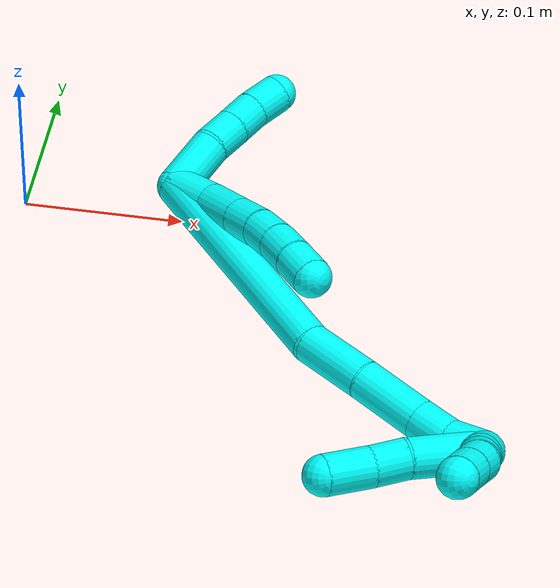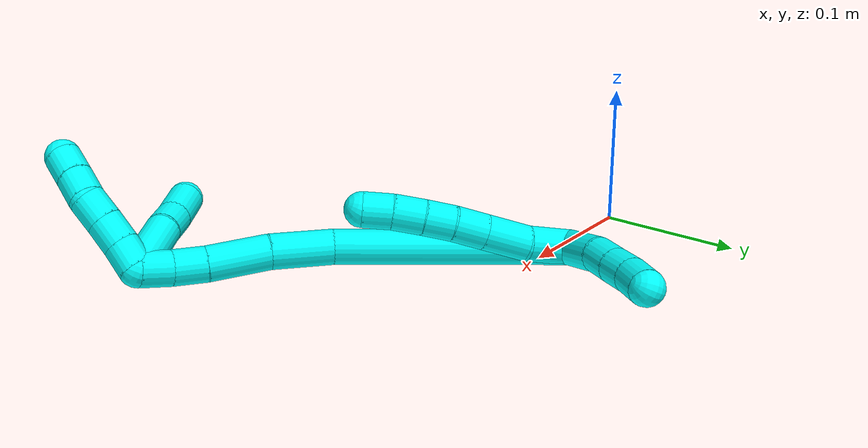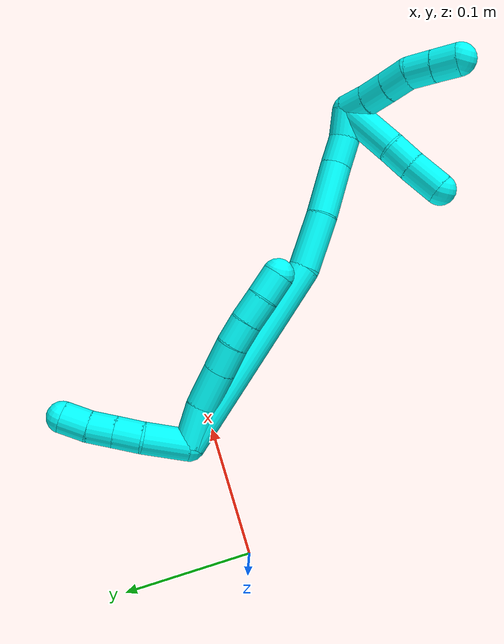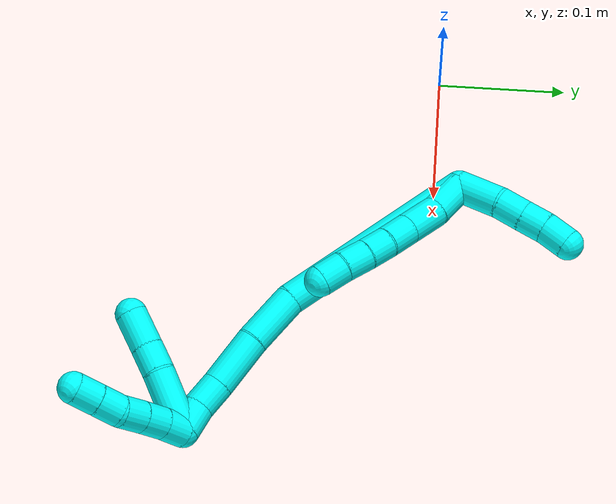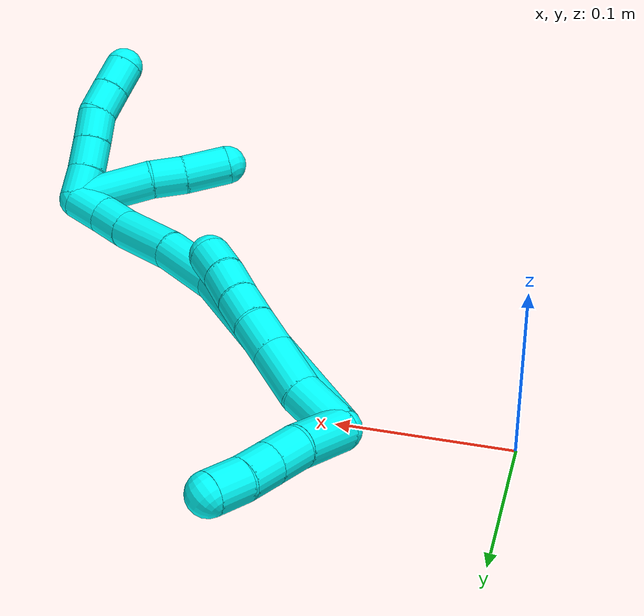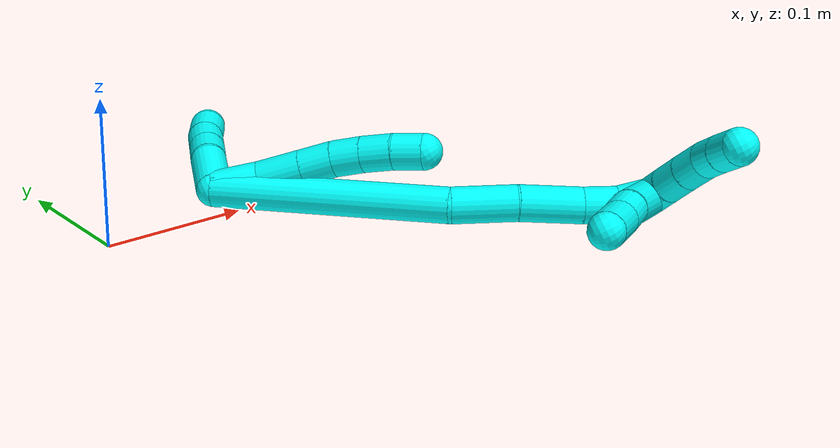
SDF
<sdf version="1.7">
 <world name="default">
  <model name="3">
   <static>0</static>
   <link name="3">
    <collision name="collision-cylinder-e_1_2_8">
     <pose>0.004162 -0.001148 0.01567 0.073124 0.258926 0.009524</pose>
     <geometry><cylinder><radius>0.0125</radius><length>0.032507</length></cylinder></geometry>
     <surface>
      <friction><ode><mu>1.16</mu><mu2>1.16</mu2><slip1>0</slip1><slip2>0</slip2></ode></friction>
      <contact><ode><kp>1e+06</kp><kd>1</kd><max_vel>0</max_vel><min_depth>0.001</min_depth></ode></contact>
     </surface>
    </collision>
    <visual name="visual-cylinder-e_1_2_8">
     <pose>0.004162 -0.001148 0.01567 0.073124 0.258926 0.009524</pose>
     <geometry><cylinder><radius>0.0125</radius><length>0.032507</length></cylinder></geometry>
     <material><ambient>0.003922 1 0.996078 1</ambient></material>
    </visual>
    <collision name="collision-cylinder-e_2_8_9">
     <pose>0.009996 -0.005446 0.046694 0.202334 0.106334 0.010804</pose>
     <geometry><cylinder><radius>0.0125</radius><length>0.031526</length></cylinder></geometry>
     <surface>
      <friction><ode><mu>1.16</mu><mu2>1.16</mu2><slip1>0</slip1><slip2>0</slip2></ode></friction>
      <contact><ode><kp>1e+06</kp><kd>1</kd><max_vel>0</max_vel><min_depth>0.001</min_depth></ode></contact>
     </surface>
    </collision>
    <visual name="visual-cylinder-e_2_8_9">
     <pose>0.009996 -0.005446 0.046694 0.202334 0.106334 0.010804</pose>
     <geometry><cylinder><radius>0.0125</radius><length>0.031526</length></cylinder></geometry>
     <material><ambient>0.003922 1 0.996078 1</ambient></material>
    </visual>
    <collision name="collision-cylinder-e_3_9_10">
     <pose>0.012866 -0.010863 0.073121 0.202011 0.105535 0.010706</pose>
     <geometry><cylinder><radius>0.0125</radius><length>0.022731</length></cylinder></geometry>
     <surface>
      <friction><ode><mu>1.16</mu><mu2>1.16</mu2><slip1>0</slip1><slip2>0</slip2></ode></friction>
      <contact><ode><kp>1e+06</kp><kd>1</kd><max_vel>0</max_vel><min_depth>0.001</min_depth></ode></contact>
     </surface>
    </collision>
    <visual name="visual-cylinder-e_3_9_10">
     <pose>0.012866 -0.010863 0.073121 0.202011 0.105535 0.010706</pose>
     <geometry><cylinder><radius>0.0125</radius><length>0.022731</length></cylinder></geometry>
     <material><ambient>0.003922 1 0.996078 1</ambient></material>
    </visual>
    <collision name="collision-cylinder-e_4_10_11">
     <pose>0.015843 -0.016122 0.09388 0.299511 0.173721 0.026277</pose>
     <geometry><cylinder><radius>0.0125</radius><length>0.020586</length></cylinder></geometry>
     <surface>
      <friction><ode><mu>1.16</mu><mu2>1.16</mu2><slip1>0</slip1><slip2>0</slip2></ode></friction>
      <contact><ode><kp>1e+06</kp><kd>1</kd><max_vel>0</max_vel><min_depth>0.001</min_depth></ode></contact>
     </surface>
    </collision>
    <visual name="visual-cylinder-e_4_10_11">
     <pose>0.015843 -0.016122 0.09388 0.299511 0.173721 0.026277</pose>
     <geometry><cylinder><radius>0.0125</radius><length>0.020586</length></cylinder></geometry>
     <material><ambient>0.003922 1 0.996078 1</ambient></material>
    </visual>
    <collision name="collision-cylinder-e_5_11_12">
     <pose>0.019804 -0.02298 0.113503 0.371079 0.201863 0.038014</pose>
     <geometry><cylinder><radius>0.0125</radius><length>0.021766</length></cylinder></geometry>
     <surface>
      <friction><ode><mu>1.16</mu><mu2>1.16</mu2><slip1>0</slip1><slip2>0</slip2></ode></friction>
      <contact><ode><kp>1e+06</kp><kd>1</kd><max_vel>0</max_vel><min_depth>0.001</min_depth></ode></contact>
     </surface>
    </collision>
    <visual name="visual-cylinder-e_5_11_12">
     <pose>0.019804 -0.02298 0.113503 0.371079 0.201863 0.038014</pose>
     <geometry><cylinder><radius>0.0125</radius><length>0.021766</length></cylinder></geometry>
     <material><ambient>0.003922 1 0.996078 1</ambient></material>
    </visual>
    <collision name="collision-cylinder-e_6_12_6">
     <pose>0.025115 -0.030485 0.132713 0.373929 0.304329 0.058003</pose>
     <geometry><cylinder><radius>0.0125</radius><length>0.020884</length></cylinder></geometry>
     <surface>
      <friction><ode><mu>1.16</mu><mu2>1.16</mu2><slip1>0</slip1><slip2>0</slip2></ode></friction>
      <contact><ode><kp>1e+06</kp><kd>1</kd><max_vel>0</max_vel><min_depth>0.001</min_depth></ode></contact>
     </surface>
    </collision>
    <visual name="visual-cylinder-e_6_12_6">
     <pose>0.025115 -0.030485 0.132713 0.373929 0.304329 0.058003</pose>
     <geometry><cylinder><radius>0.0125</radius><length>0.020884</length></cylinder></geometry>
     <material><ambient>0.003922 1 0.996078 1</ambient></material>
    </visual>
    <collision name="collision-cylinder-e_1_2_13">
     <pose>-0.001393 0.018336 -0.000245 -1.58414 -0.075818 0.076835</pose>
     <geometry><cylinder><radius>0.0125</radius><length>0.036781</length></cylinder></geometry>
     <surface>
      <friction><ode><mu>1.16</mu><mu2>1.16</mu2><slip1>0</slip1><slip2>0</slip2></ode></friction>
      <contact><ode><kp>1e+06</kp><kd>1</kd><max_vel>0</max_vel><min_depth>0.001</min_depth></ode></contact>
     </surface>
    </collision>
    <visual name="visual-cylinder-e_1_2_13">
     <pose>-0.001393 0.018336 -0.000245 -1.58414 -0.075818 0.076835</pose>
     <geometry><cylinder><radius>0.0125</radius><length>0.036781</length></cylinder></geometry>
     <material><ambient>0.003922 1 0.996078 1</ambient></material>
    </visual>
    <collision name="collision-cylinder-e_2_13_14">
     <pose>-0.001532 0.047379 -0.001112 -1.62891 0.116382 -0.123333</pose>
     <geometry><cylinder><radius>0.0125</radius><length>0.021597</length></cylinder></geometry>
     <surface>
      <friction><ode><mu>1.16</mu><mu2>1.16</mu2><slip1>0</slip1><slip2>0</slip2></ode></friction>
      <contact><ode><kp>1e+06</kp><kd>1</kd><max_vel>0</max_vel><min_depth>0.001</min_depth></ode></contact>
     </surface>
    </collision>
    <visual name="visual-cylinder-e_2_13_14">
     <pose>-0.001532 0.047379 -0.001112 -1.62891 0.116382 -0.123333</pose>
     <geometry><cylinder><radius>0.0125</radius><length>0.021597</length></cylinder></geometry>
     <material><ambient>0.003922 1 0.996078 1</ambient></material>
    </visual>
    <collision name="collision-cylinder-e_3_14_15">
     <pose>0.000711 0.06807 -0.002321 -1.62943 0.098586 -0.104532</pose>
     <geometry><cylinder><radius>0.0125</radius><length>0.020099</length></cylinder></geometry>
     <surface>
      <friction><ode><mu>1.16</mu><mu2>1.16</mu2><slip1>0</slip1><slip2>0</slip2></ode></friction>
      <contact><ode><kp>1e+06</kp><kd>1</kd><max_vel>0</max_vel><min_depth>0.001</min_depth></ode></contact>
     </surface>
    </collision>
    <visual name="visual-cylinder-e_3_14_15">
     <pose>0.000711 0.06807 -0.002321 -1.62943 0.098586 -0.104532</pose>
     <geometry><cylinder><radius>0.0125</radius><length>0.020099</length></cylinder></geometry>
     <material><ambient>0.003922 1 0.996078 1</ambient></material>
    </visual>
    <collision name="collision-cylinder-e_4_15_5">
     <pose>0.003407 0.088655 -0.002201 -1.50431 0.159313 -0.149098</pose>
     <geometry><cylinder><radius>0.0125</radius><length>0.021523</length></cylinder></geometry>
     <surface>
      <friction><ode><mu>1.16</mu><mu2>1.16</mu2><slip1>0</slip1><slip2>0</slip2></ode></friction>
      <contact><ode><kp>1e+06</kp><kd>1</kd><max_vel>0</max_vel><min_depth>0.001</min_depth></ode></contact>
     </surface>
    </collision>
    <visual name="visual-cylinder-e_4_15_5">
     <pose>0.003407 0.088655 -0.002201 -1.50431 0.159313 -0.149098</pose>
     <geometry><cylinder><radius>0.0125</radius><length>0.021523</length></cylinder></geometry>
     <material><ambient>0.003922 1 0.996078 1</ambient></material>
    </visual>
    <collision name="collision-cylinder-e_1_2_16">
     <pose>0.030232 -0.028797 0.070867 0.385974 0.376373 0.074397</pose>
     <geometry><cylinder><radius>0.0125</radius><length>0.164505</length></cylinder></geometry>
     <surface>
      <friction><ode><mu>1.16</mu><mu2>1.16</mu2><slip1>0</slip1><slip2>0</slip2></ode></friction>
      <contact><ode><kp>1e+06</kp><kd>1</kd><max_vel>0</max_vel><min_depth>0.001</min_depth></ode></contact>
     </surface>
    </collision>
    <visual name="visual-cylinder-e_1_2_16">
     <pose>0.030232 -0.028797 0.070867 0.385974 0.376373 0.074397</pose>
     <geometry><cylinder><radius>0.0125</radius><length>0.164505</length></cylinder></geometry>
     <material><ambient>0.003922 1 0.996078 1</ambient></material>
    </visual>
    <collision name="collision-cylinder-e_2_16_17">
     <pose>0.069743 -0.06012 0.161935 0.124349 0.427682 0.027037</pose>
     <geometry><cylinder><radius>0.0125</radius><length>0.044745</length></cylinder></geometry>
     <surface>
      <friction><ode><mu>1.16</mu><mu2>1.16</mu2><slip1>0</slip1><slip2>0</slip2></ode></friction>
      <contact><ode><kp>1e+06</kp><kd>1</kd><max_vel>0</max_vel><min_depth>0.001</min_depth></ode></contact>
     </surface>
    </collision>
    <visual name="visual-cylinder-e_2_16_17">
     <pose>0.069743 -0.06012 0.161935 0.124349 0.427682 0.027037</pose>
     <geometry><cylinder><radius>0.0125</radius><length>0.044745</length></cylinder></geometry>
     <material><ambient>0.003922 1 0.996078 1</ambient></material>
    </visual>
    <collision name="collision-cylinder-e_3_17_18">
     <pose>0.09016 -0.064356 0.200766 0.091585 0.536953 0.025213</pose>
     <geometry><cylinder><radius>0.0125</radius><length>0.043547</length></cylinder></geometry>
     <surface>
      <friction><ode><mu>1.16</mu><mu2>1.16</mu2><slip1>0</slip1><slip2>0</slip2></ode></friction>
      <contact><ode><kp>1e+06</kp><kd>1</kd><max_vel>0</max_vel><min_depth>0.001</min_depth></ode></contact>
     </surface>
    </collision>
    <visual name="visual-cylinder-e_3_17_18">
     <pose>0.09016 -0.064356 0.200766 0.091585 0.536953 0.025213</pose>
     <geometry><cylinder><radius>0.0125</radius><length>0.043547</length></cylinder></geometry>
     <material><ambient>0.003922 1 0.996078 1</ambient></material>
    </visual>
    <collision name="collision-cylinder-e_4_18_19">
     <pose>0.106527 -0.067195 0.229994 0.106083 0.456253 0.024651</pose>
     <geometry><cylinder><radius>0.0125</radius><length>0.023741</length></cylinder></geometry>
     <surface>
      <friction><ode><mu>1.16</mu><mu2>1.16</mu2><slip1>0</slip1><slip2>0</slip2></ode></friction>
      <contact><ode><kp>1e+06</kp><kd>1</kd><max_vel>0</max_vel><min_depth>0.001</min_depth></ode></contact>
     </surface>
    </collision>
    <visual name="visual-cylinder-e_4_18_19">
     <pose>0.106527 -0.067195 0.229994 0.106083 0.456253 0.024651</pose>
     <geometry><cylinder><radius>0.0125</radius><length>0.023741</length></cylinder></geometry>
     <material><ambient>0.003922 1 0.996078 1</ambient></material>
    </visual>
    <collision name="collision-cylinder-e_5_19_1">
     <pose>0.115568 -0.066985 0.251604 -0.120961 0.330805 -0.020216</pose>
     <geometry><cylinder><radius>0.0125</radius><length>0.023462</length></cylinder></geometry>
     <surface>
      <friction><ode><mu>1.16</mu><mu2>1.16</mu2><slip1>0</slip1><slip2>0</slip2></ode></friction>
      <contact><ode><kp>1e+06</kp><kd>1</kd><max_vel>0</max_vel><min_depth>0.001</min_depth></ode></contact>
     </surface>
    </collision>
    <visual name="visual-cylinder-e_5_19_1">
     <pose>0.115568 -0.066985 0.251604 -0.120961 0.330805 -0.020216</pose>
     <geometry><cylinder><radius>0.0125</radius><length>0.023462</length></cylinder></geometry>
     <material><ambient>0.003922 1 0.996078 1</ambient></material>
    </visual>
    <collision name="collision-cylinder-e_1_1_20">
     <pose>0.114198 -0.071283 0.269051 0.71956 -0.544568 -0.20929</pose>
     <geometry><cylinder><radius>0.0125</radius><length>0.02</length></cylinder></geometry>
     <surface>
      <friction><ode><mu>1.16</mu><mu2>1.16</mu2><slip1>0</slip1><slip2>0</slip2></ode></friction>
      <contact><ode><kp>1e+06</kp><kd>1</kd><max_vel>0</max_vel><min_depth>0.001</min_depth></ode></contact>
     </surface>
    </collision>
    <visual name="visual-cylinder-e_1_1_20">
     <pose>0.114198 -0.071283 0.269051 0.71956 -0.544568 -0.20929</pose>
     <geometry><cylinder><radius>0.0125</radius><length>0.02</length></cylinder></geometry>
     <material><ambient>0.003922 1 0.996078 1</ambient></material>
    </visual>
    <collision name="collision-cylinder-e_2_20_21">
     <pose>0.104131 -0.082144 0.282472 0.641892 -0.51054 -0.173076</pose>
     <geometry><cylinder><radius>0.0125</radius><length>0.02</length></cylinder></geometry>
     <surface>
      <friction><ode><mu>1.16</mu><mu2>1.16</mu2><slip1>0</slip1><slip2>0</slip2></ode></friction>
      <contact><ode><kp>1e+06</kp><kd>1</kd><max_vel>0</max_vel><min_depth>0.001</min_depth></ode></contact>
     </surface>
    </collision>
    <visual name="visual-cylinder-e_2_20_21">
     <pose>0.104131 -0.082144 0.282472 0.641892 -0.51054 -0.173076</pose>
     <geometry><cylinder><radius>0.0125</radius><length>0.02</length></cylinder></geometry>
     <material><ambient>0.003922 1 0.996078 1</ambient></material>
    </visual>
    <collision name="collision-cylinder-e_3_21_22">
     <pose>0.094575 -0.092573 0.296609 0.629378 -0.485837 -0.16098</pose>
     <geometry><cylinder><radius>0.0125</radius><length>0.02</length></cylinder></geometry>
     <surface>
      <friction><ode><mu>1.16</mu><mu2>1.16</mu2><slip1>0</slip1><slip2>0</slip2></ode></friction>
      <contact><ode><kp>1e+06</kp><kd>1</kd><max_vel>0</max_vel><min_depth>0.001</min_depth></ode></contact>
     </surface>
    </collision>
    <visual name="visual-cylinder-e_3_21_22">
     <pose>0.094575 -0.092573 0.296609 0.629378 -0.485837 -0.16098</pose>
     <geometry><cylinder><radius>0.0125</radius><length>0.02</length></cylinder></geometry>
     <material><ambient>0.003922 1 0.996078 1</ambient></material>
    </visual>
    <collision name="collision-cylinder-e_4_22_23">
     <pose>0.085169 -0.105072 0.308695 0.975705 -0.493354 -0.265659</pose>
     <geometry><cylinder><radius>0.0125</radius><length>0.02</length></cylinder></geometry>
     <surface>
      <friction><ode><mu>1.16</mu><mu2>1.16</mu2><slip1>0</slip1><slip2>0</slip2></ode></friction>
      <contact><ode><kp>1e+06</kp><kd>1</kd><max_vel>0</max_vel><min_depth>0.001</min_depth></ode></contact>
     </surface>
    </collision>
    <visual name="visual-cylinder-e_4_22_23">
     <pose>0.085169 -0.105072 0.308695 0.975705 -0.493354 -0.265659</pose>
     <geometry><cylinder><radius>0.0125</radius><length>0.02</length></cylinder></geometry>
     <material><ambient>0.003922 1 0.996078 1</ambient></material>
    </visual>
    <collision name="collision-cylinder-e_5_23_4">
     <pose>0.075904 -0.119812 0.318534 0.988594 -0.470114 -0.256707</pose>
     <geometry><cylinder><radius>0.0125</radius><length>0.02</length></cylinder></geometry>
     <surface>
      <friction><ode><mu>1.16</mu><mu2>1.16</mu2><slip1>0</slip1><slip2>0</slip2></ode></friction>
      <contact><ode><kp>1e+06</kp><kd>1</kd><max_vel>0</max_vel><min_depth>0.001</min_depth></ode></contact>
     </surface>
    </collision>
    <visual name="visual-cylinder-e_5_23_4">
     <pose>0.075904 -0.119812 0.318534 0.988594 -0.470114 -0.256707</pose>
     <geometry><cylinder><radius>0.0125</radius><length>0.02</length></cylinder></geometry>
     <material><ambient>0.003922 1 0.996078 1</ambient></material>
    </visual>
    <collision name="collision-cylinder-e_1_1_24">
     <pose>0.106398 -0.084514 0.254276 1.98706 -0.561614 -0.833823</pose>
     <geometry><cylinder><radius>0.0125</radius><length>0.048748</length></cylinder></geometry>
     <surface>
      <friction><ode><mu>1.16</mu><mu2>1.16</mu2><slip1>0</slip1><slip2>0</slip2></ode></friction>
      <contact><ode><kp>1e+06</kp><kd>1</kd><max_vel>0</max_vel><min_depth>0.001</min_depth></ode></contact>
     </surface>
    </collision>
    <visual name="visual-cylinder-e_1_1_24">
     <pose>0.106398 -0.084514 0.254276 1.98706 -0.561614 -0.833823</pose>
     <geometry><cylinder><radius>0.0125</radius><length>0.048748</length></cylinder></geometry>
     <material><ambient>0.003922 1 0.996078 1</ambient></material>
    </visual>
    <collision name="collision-cylinder-e_2_24_25">
     <pose>0.089131 -0.112455 0.241604 2.01617 -0.403057 -0.626496</pose>
     <geometry><cylinder><radius>0.0125</radius><length>0.021857</length></cylinder></geometry>
     <surface>
      <friction><ode><mu>1.16</mu><mu2>1.16</mu2><slip1>0</slip1><slip2>0</slip2></ode></friction>
      <contact><ode><kp>1e+06</kp><kd>1</kd><max_vel>0</max_vel><min_depth>0.001</min_depth></ode></contact>
     </surface>
    </collision>
    <visual name="visual-cylinder-e_2_24_25">
     <pose>0.089131 -0.112455 0.241604 2.01617 -0.403057 -0.626496</pose>
     <geometry><cylinder><radius>0.0125</radius><length>0.021857</length></cylinder></geometry>
     <material><ambient>0.003922 1 0.996078 1</ambient></material>
    </visual>
    <collision name="collision-cylinder-e_3_25_3">
     <pose>0.078047 -0.133564 0.23228 1.96402 -0.480773 -0.703595</pose>
     <geometry><cylinder><radius>0.0125</radius><length>0.029395</length></cylinder></geometry>
     <surface>
      <friction><ode><mu>1.16</mu><mu2>1.16</mu2><slip1>0</slip1><slip2>0</slip2></ode></friction>
      <contact><ode><kp>1e+06</kp><kd>1</kd><max_vel>0</max_vel><min_depth>0.001</min_depth></ode></contact>
     </surface>
    </collision>
    <visual name="visual-cylinder-e_3_25_3">
     <pose>0.078047 -0.133564 0.23228 1.96402 -0.480773 -0.703595</pose>
     <geometry><cylinder><radius>0.0125</radius><length>0.029395</length></cylinder></geometry>
     <material><ambient>0.003922 1 0.996078 1</ambient></material>
    </visual>
    <collision name="collision-sphere-3">
     <pose>0.07125 -0.145601 0.227286 0 -0 0</pose>
     <geometry><sphere><radius>0.0125</radius></sphere></geometry>
     <surface>
      <friction><ode><mu>1.16</mu><mu2>1.16</mu2><slip1>0</slip1><slip2>0</slip2></ode></friction>
      <contact><ode><kp>1e+06</kp><kd>1</kd><max_vel>0</max_vel><min_depth>0.001</min_depth></ode></contact>
     </surface>
    </collision>
    <visual name="visual-sphere-3">
     <pose>0.07125 -0.145601 0.227286 0 -0 0</pose>
     <geometry><sphere><radius>0.0125</radius></sphere></geometry>
     <material><ambient>0.003922 1 0.996078 1</ambient></material>
    </visual>
    <collision name="collision-sphere-25">
     <pose>0.084844 -0.121527 0.237273 0 -0 0</pose>
     <geometry><sphere><radius>0.0125</radius></sphere></geometry>
     <surface>
      <friction><ode><mu>1.16</mu><mu2>1.16</mu2><slip1>0</slip1><slip2>0</slip2></ode></friction>
      <contact><ode><kp>1e+06</kp><kd>1</kd><max_vel>0</max_vel><min_depth>0.001</min_depth></ode></contact>
     </surface>
    </collision>
    <visual name="visual-sphere-25">
     <pose>0.084844 -0.121527 0.237273 0 -0 0</pose>
     <geometry><sphere><radius>0.0125</radius></sphere></geometry>
     <material><ambient>0.003922 1 0.996078 1</ambient></material>
    </visual>
    <collision name="collision-sphere-24">
     <pose>0.093417 -0.103382 0.245935 0 -0 0</pose>
     <geometry><sphere><radius>0.0125</radius></sphere></geometry>
     <surface>
      <friction><ode><mu>1.16</mu><mu2>1.16</mu2><slip1>0</slip1><slip2>0</slip2></ode></friction>
      <contact><ode><kp>1e+06</kp><kd>1</kd><max_vel>0</max_vel><min_depth>0.001</min_depth></ode></contact>
     </surface>
    </collision>
    <visual name="visual-sphere-24">
     <pose>0.093417 -0.103382 0.245935 0 -0 0</pose>
     <geometry><sphere><radius>0.0125</radius></sphere></geometry>
     <material><ambient>0.003922 1 0.996078 1</ambient></material>
    </visual>
    <collision name="collision-sphere-4">
     <pose>0.071374 -0.127258 0.323437 0 -0 0</pose>
     <geometry><sphere><radius>0.0125</radius></sphere></geometry>
     <surface>
      <friction><ode><mu>1.16</mu><mu2>1.16</mu2><slip1>0</slip1><slip2>0</slip2></ode></friction>
      <contact><ode><kp>1e+06</kp><kd>1</kd><max_vel>0</max_vel><min_depth>0.001</min_depth></ode></contact>
     </surface>
    </collision>
    <visual name="visual-sphere-4">
     <pose>0.071374 -0.127258 0.323437 0 -0 0</pose>
     <geometry><sphere><radius>0.0125</radius></sphere></geometry>
     <material><ambient>0.003922 1 0.996078 1</ambient></material>
    </visual>
    <collision name="collision-sphere-23">
     <pose>0.080433 -0.112365 0.313632 0 -0 0</pose>
     <geometry><sphere><radius>0.0125</radius></sphere></geometry>
     <surface>
      <friction><ode><mu>1.16</mu><mu2>1.16</mu2><slip1>0</slip1><slip2>0</slip2></ode></friction>
      <contact><ode><kp>1e+06</kp><kd>1</kd><max_vel>0</max_vel><min_depth>0.001</min_depth></ode></contact>
     </surface>
    </collision>
    <visual name="visual-sphere-23">
     <pose>0.080433 -0.112365 0.313632 0 -0 0</pose>
     <geometry><sphere><radius>0.0125</radius></sphere></geometry>
     <material><ambient>0.003922 1 0.996078 1</ambient></material>
    </visual>
    <collision name="collision-sphere-22">
     <pose>0.089905 -0.097778 0.303758 0 -0 0</pose>
     <geometry><sphere><radius>0.0125</radius></sphere></geometry>
     <surface>
      <friction><ode><mu>1.16</mu><mu2>1.16</mu2><slip1>0</slip1><slip2>0</slip2></ode></friction>
      <contact><ode><kp>1e+06</kp><kd>1</kd><max_vel>0</max_vel><min_depth>0.001</min_depth></ode></contact>
     </surface>
    </collision>
    <visual name="visual-sphere-22">
     <pose>0.089905 -0.097778 0.303758 0 -0 0</pose>
     <geometry><sphere><radius>0.0125</radius></sphere></geometry>
     <material><ambient>0.003922 1 0.996078 1</ambient></material>
    </visual>
    <collision name="collision-sphere-21">
     <pose>0.099244 -0.087368 0.289461 0 -0 0</pose>
     <geometry><sphere><radius>0.0125</radius></sphere></geometry>
     <surface>
      <friction><ode><mu>1.16</mu><mu2>1.16</mu2><slip1>0</slip1><slip2>0</slip2></ode></friction>
      <contact><ode><kp>1e+06</kp><kd>1</kd><max_vel>0</max_vel><min_depth>0.001</min_depth></ode></contact>
     </surface>
    </collision>
    <visual name="visual-sphere-21">
     <pose>0.099244 -0.087368 0.289461 0 -0 0</pose>
     <geometry><sphere><radius>0.0125</radius></sphere></geometry>
     <material><ambient>0.003922 1 0.996078 1</ambient></material>
    </visual>
    <collision name="collision-sphere-20">
     <pose>0.109017 -0.07692 0.275484 0 -0 0</pose>
     <geometry><sphere><radius>0.0125</radius></sphere></geometry>
     <surface>
      <friction><ode><mu>1.16</mu><mu2>1.16</mu2><slip1>0</slip1><slip2>0</slip2></ode></friction>
      <contact><ode><kp>1e+06</kp><kd>1</kd><max_vel>0</max_vel><min_depth>0.001</min_depth></ode></contact>
     </surface>
    </collision>
    <visual name="visual-sphere-20">
     <pose>0.109017 -0.07692 0.275484 0 -0 0</pose>
     <geometry><sphere><radius>0.0125</radius></sphere></geometry>
     <material><ambient>0.003922 1 0.996078 1</ambient></material>
    </visual>
    <collision name="collision-sphere-12">
     <pose>0.021986 -0.026846 0.123439 0 -0 0</pose>
     <geometry><sphere><radius>0.0125</radius></sphere></geometry>
     <surface>
      <friction><ode><mu>1.16</mu><mu2>1.16</mu2><slip1>0</slip1><slip2>0</slip2></ode></friction>
      <contact><ode><kp>1e+06</kp><kd>1</kd><max_vel>0</max_vel><min_depth>0.001</min_depth></ode></contact>
     </surface>
    </collision>
    <visual name="visual-sphere-12">
     <pose>0.021986 -0.026846 0.123439 0 -0 0</pose>
     <geometry><sphere><radius>0.0125</radius></sphere></geometry>
     <material><ambient>0.003922 1 0.996078 1</ambient></material>
    </visual>
    <collision name="collision-sphere-11">
     <pose>0.017622 -0.019113 0.103566 0 -0 0</pose>
     <geometry><sphere><radius>0.0125</radius></sphere></geometry>
     <surface>
      <friction><ode><mu>1.16</mu><mu2>1.16</mu2><slip1>0</slip1><slip2>0</slip2></ode></friction>
      <contact><ode><kp>1e+06</kp><kd>1</kd><max_vel>0</max_vel><min_depth>0.001</min_depth></ode></contact>
     </surface>
    </collision>
    <visual name="visual-sphere-11">
     <pose>0.017622 -0.019113 0.103566 0 -0 0</pose>
     <geometry><sphere><radius>0.0125</radius></sphere></geometry>
     <material><ambient>0.003922 1 0.996078 1</ambient></material>
    </visual>
    <collision name="collision-sphere-10">
     <pose>0.014064 -0.013131 0.084193 0 -0 0</pose>
     <geometry><sphere><radius>0.0125</radius></sphere></geometry>
     <surface>
      <friction><ode><mu>1.16</mu><mu2>1.16</mu2><slip1>0</slip1><slip2>0</slip2></ode></friction>
      <contact><ode><kp>1e+06</kp><kd>1</kd><max_vel>0</max_vel><min_depth>0.001</min_depth></ode></contact>
     </surface>
    </collision>
    <visual name="visual-sphere-10">
     <pose>0.014064 -0.013131 0.084193 0 -0 0</pose>
     <geometry><sphere><radius>0.0125</radius></sphere></geometry>
     <material><ambient>0.003922 1 0.996078 1</ambient></material>
    </visual>
    <collision name="collision-sphere-9">
     <pose>0.011669 -0.008595 0.062048 0 -0 0</pose>
     <geometry><sphere><radius>0.0125</radius></sphere></geometry>
     <surface>
      <friction><ode><mu>1.16</mu><mu2>1.16</mu2><slip1>0</slip1><slip2>0</slip2></ode></friction>
      <contact><ode><kp>1e+06</kp><kd>1</kd><max_vel>0</max_vel><min_depth>0.001</min_depth></ode></contact>
     </surface>
    </collision>
    <visual name="visual-sphere-9">
     <pose>0.011669 -0.008595 0.062048 0 -0 0</pose>
     <geometry><sphere><radius>0.0125</radius></sphere></geometry>
     <material><ambient>0.003922 1 0.996078 1</ambient></material>
    </visual>
    <collision name="collision-sphere-2">
     <geometry><sphere><radius>0.0125</radius></sphere></geometry>
     <surface>
      <friction><ode><mu>1.16</mu><mu2>1.16</mu2><slip1>0</slip1><slip2>0</slip2></ode></friction>
      <contact><ode><kp>1e+06</kp><kd>1</kd><max_vel>0</max_vel><min_depth>0.001</min_depth></ode></contact>
     </surface>
    </collision>
    <visual name="visual-sphere-2">
     <geometry><sphere><radius>0.0125</radius></sphere></geometry>
     <material><ambient>0.003922 1 0.996078 1</ambient></material>
    </visual>
    <collision name="collision-sphere-19">
     <pose>0.111758 -0.068324 0.24059 0 -0 0</pose>
     <geometry><sphere><radius>0.0125</radius></sphere></geometry>
     <surface>
      <friction><ode><mu>1.16</mu><mu2>1.16</mu2><slip1>0</slip1><slip2>0</slip2></ode></friction>
      <contact><ode><kp>1e+06</kp><kd>1</kd><max_vel>0</max_vel><min_depth>0.001</min_depth></ode></contact>
     </surface>
    </collision>
    <visual name="visual-sphere-19">
     <pose>0.111758 -0.068324 0.24059 0 -0 0</pose>
     <geometry><sphere><radius>0.0125</radius></sphere></geometry>
     <material><ambient>0.003922 1 0.996078 1</ambient></material>
    </visual>
    <collision name="collision-sphere-8">
     <pose>0.008323 -0.002296 0.031339 0 -0 0</pose>
     <geometry><sphere><radius>0.0125</radius></sphere></geometry>
     <surface>
      <friction><ode><mu>1.16</mu><mu2>1.16</mu2><slip1>0</slip1><slip2>0</slip2></ode></friction>
      <contact><ode><kp>1e+06</kp><kd>1</kd><max_vel>0</max_vel><min_depth>0.001</min_depth></ode></contact>
     </surface>
    </collision>
    <visual name="visual-sphere-8">
     <pose>0.008323 -0.002296 0.031339 0 -0 0</pose>
     <geometry><sphere><radius>0.0125</radius></sphere></geometry>
     <material><ambient>0.003922 1 0.996078 1</ambient></material>
    </visual>
    <collision name="collision-sphere-6">
     <pose>0.028244 -0.034124 0.141986 0 -0 0</pose>
     <geometry><sphere><radius>0.0125</radius></sphere></geometry>
     <surface>
      <friction><ode><mu>1.16</mu><mu2>1.16</mu2><slip1>0</slip1><slip2>0</slip2></ode></friction>
      <contact><ode><kp>1e+06</kp><kd>1</kd><max_vel>0</max_vel><min_depth>0.001</min_depth></ode></contact>
     </surface>
    </collision>
    <visual name="visual-sphere-6">
     <pose>0.028244 -0.034124 0.141986 0 -0 0</pose>
     <geometry><sphere><radius>0.0125</radius></sphere></geometry>
     <material><ambient>0.003922 1 0.996078 1</ambient></material>
    </visual>
    <collision name="collision-sphere-13">
     <pose>-0.002786 0.036672 -0.000489 0 -0 0</pose>
     <geometry><sphere><radius>0.0125</radius></sphere></geometry>
     <surface>
      <friction><ode><mu>1.16</mu><mu2>1.16</mu2><slip1>0</slip1><slip2>0</slip2></ode></friction>
      <contact><ode><kp>1e+06</kp><kd>1</kd><max_vel>0</max_vel><min_depth>0.001</min_depth></ode></contact>
     </surface>
    </collision>
    <visual name="visual-sphere-13">
     <pose>-0.002786 0.036672 -0.000489 0 -0 0</pose>
     <geometry><sphere><radius>0.0125</radius></sphere></geometry>
     <material><ambient>0.003922 1 0.996078 1</ambient></material>
    </visual>
    <collision name="collision-sphere-14">
     <pose>-0.000278 0.058087 -0.001735 0 -0 0</pose>
     <geometry><sphere><radius>0.0125</radius></sphere></geometry>
     <surface>
      <friction><ode><mu>1.16</mu><mu2>1.16</mu2><slip1>0</slip1><slip2>0</slip2></ode></friction>
      <contact><ode><kp>1e+06</kp><kd>1</kd><max_vel>0</max_vel><min_depth>0.001</min_depth></ode></contact>
     </surface>
    </collision>
    <visual name="visual-sphere-14">
     <pose>-0.000278 0.058087 -0.001735 0 -0 0</pose>
     <geometry><sphere><radius>0.0125</radius></sphere></geometry>
     <material><ambient>0.003922 1 0.996078 1</ambient></material>
    </visual>
    <collision name="collision-sphere-15">
     <pose>0.0017 0.078054 -0.002907 0 -0 0</pose>
     <geometry><sphere><radius>0.0125</radius></sphere></geometry>
     <surface>
      <friction><ode><mu>1.16</mu><mu2>1.16</mu2><slip1>0</slip1><slip2>0</slip2></ode></friction>
      <contact><ode><kp>1e+06</kp><kd>1</kd><max_vel>0</max_vel><min_depth>0.001</min_depth></ode></contact>
     </surface>
    </collision>
    <visual name="visual-sphere-15">
     <pose>0.0017 0.078054 -0.002907 0 -0 0</pose>
     <geometry><sphere><radius>0.0125</radius></sphere></geometry>
     <material><ambient>0.003922 1 0.996078 1</ambient></material>
    </visual>
    <collision name="collision-sphere-5">
     <pose>0.005115 0.099257 -0.001495 0 -0 0</pose>
     <geometry><sphere><radius>0.0125</radius></sphere></geometry>
     <surface>
      <friction><ode><mu>1.16</mu><mu2>1.16</mu2><slip1>0</slip1><slip2>0</slip2></ode></friction>
      <contact><ode><kp>1e+06</kp><kd>1</kd><max_vel>0</max_vel><min_depth>0.001</min_depth></ode></contact>
     </surface>
    </collision>
    <visual name="visual-sphere-5">
     <pose>0.005115 0.099257 -0.001495 0 -0 0</pose>
     <geometry><sphere><radius>0.0125</radius></sphere></geometry>
     <material><ambient>0.003922 1 0.996078 1</ambient></material>
    </visual>
    <collision name="collision-sphere-16">
     <pose>0.060464 -0.057595 0.141735 0 -0 0</pose>
     <geometry><sphere><radius>0.0125</radius></sphere></geometry>
     <surface>
      <friction><ode><mu>1.16</mu><mu2>1.16</mu2><slip1>0</slip1><slip2>0</slip2></ode></friction>
      <contact><ode><kp>1e+06</kp><kd>1</kd><max_vel>0</max_vel><min_depth>0.001</min_depth></ode></contact>
     </surface>
    </collision>
    <visual name="visual-sphere-16">
     <pose>0.060464 -0.057595 0.141735 0 -0 0</pose>
     <geometry><sphere><radius>0.0125</radius></sphere></geometry>
     <material><ambient>0.003922 1 0.996078 1</ambient></material>
    </visual>
    <collision name="collision-sphere-17">
     <pose>0.079022 -0.062645 0.182135 0 -0 0</pose>
     <geometry><sphere><radius>0.0125</radius></sphere></geometry>
     <surface>
      <friction><ode><mu>1.16</mu><mu2>1.16</mu2><slip1>0</slip1><slip2>0</slip2></ode></friction>
      <contact><ode><kp>1e+06</kp><kd>1</kd><max_vel>0</max_vel><min_depth>0.001</min_depth></ode></contact>
     </surface>
    </collision>
    <visual name="visual-sphere-17">
     <pose>0.079022 -0.062645 0.182135 0 -0 0</pose>
     <geometry><sphere><radius>0.0125</radius></sphere></geometry>
     <material><ambient>0.003922 1 0.996078 1</ambient></material>
    </visual>
    <collision name="collision-sphere-18">
     <pose>0.101297 -0.066067 0.219397 0 -0 0</pose>
     <geometry><sphere><radius>0.0125</radius></sphere></geometry>
     <surface>
      <friction><ode><mu>1.16</mu><mu2>1.16</mu2><slip1>0</slip1><slip2>0</slip2></ode></friction>
      <contact><ode><kp>1e+06</kp><kd>1</kd><max_vel>0</max_vel><min_depth>0.001</min_depth></ode></contact>
     </surface>
    </collision>
    <visual name="visual-sphere-18">
     <pose>0.101297 -0.066067 0.219397 0 -0 0</pose>
     <geometry><sphere><radius>0.0125</radius></sphere></geometry>
     <material><ambient>0.003922 1 0.996078 1</ambient></material>
    </visual>
    <collision name="collision-sphere-1">
     <pose>0.119378 -0.065646 0.262618 0 -0 0</pose>
     <geometry><sphere><radius>0.0125</radius></sphere></geometry>
     <surface>
      <friction><ode><mu>1.16</mu><mu2>1.16</mu2><slip1>0</slip1><slip2>0</slip2></ode></friction>
      <contact><ode><kp>1e+06</kp><kd>1</kd><max_vel>0</max_vel><min_depth>0.001</min_depth></ode></contact>
     </surface>
    </collision>
    <visual name="visual-sphere-1">
     <pose>0.119378 -0.065646 0.262618 0 -0 0</pose>
     <geometry><sphere><radius>0.0125</radius></sphere></geometry>
     <material><ambient>0.003922 1 0.996078 1</ambient></material>
    </visual>
    <inertial>
     <pose>0.050929 -0.040359 0.138283 0 -0 0</pose>
     <mass>0.75</mass>
     <inertia><ixx>0.00043</ixx><ixy>0</ixy><ixz>0</ixz><iyy>0.000399</iyy><iyz>0</iyz><izz>3.8e-05</izz></inertia>
    </inertial>
   </link>
   <pose>0.093151 0.019727 0.011476 0.338789 1.06537 -0.210524</pose>
  </model>
 </world>
</sdf>
